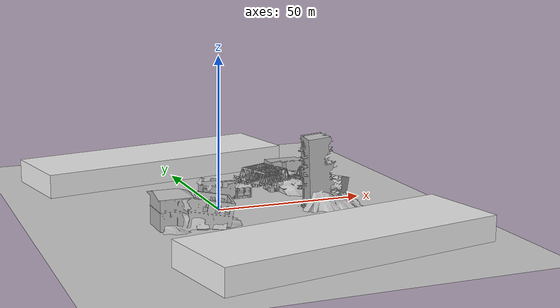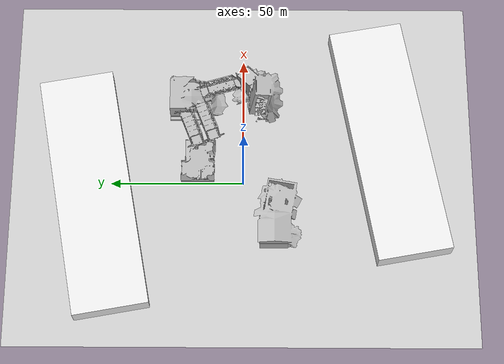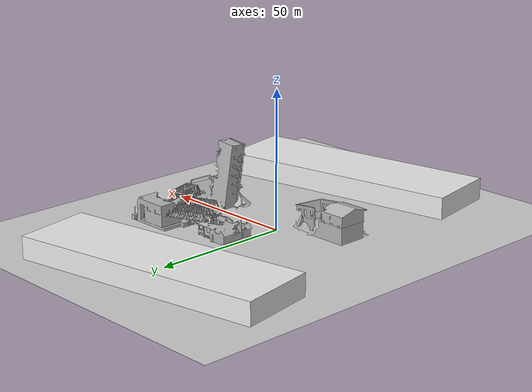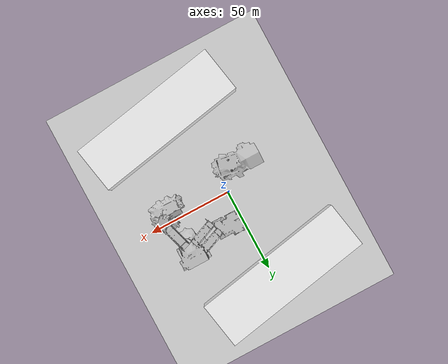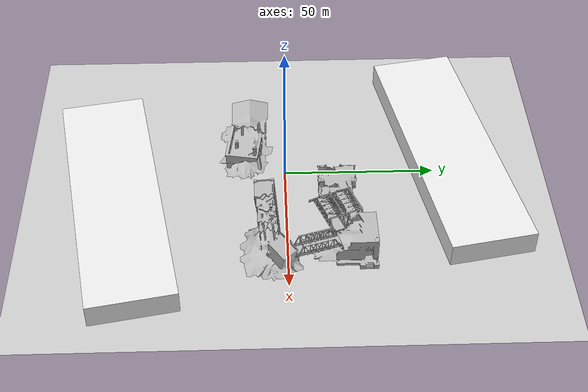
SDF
<sdf version="1.7">
 <world name="default">
  <spherical_coordinates>
   <surface_model>EARTH_WGS84</surface_model>
   <latitude_deg>42.3097</latitude_deg>
   <longitude_deg>-71.0959</longitude_deg>
   <elevation>141</elevation>
   <heading_deg>0</heading_deg>
  </spherical_coordinates>
  <gravity>0 0 -9.8066</gravity>
  <magnetic_field>6e-06 2.3e-05 -4.2e-05</magnetic_field>
  <physics name="default_physics" default="0" type="ode">
   <ode>
    <solver>
     <type>quick</type>
     <iters>10</iters>
     <sor>1.3</sor>
     <use_dynamic_moi_rescaling>0</use_dynamic_moi_rescaling>
    </solver>
    <constraints>
     <cfm>0</cfm>
     <erp>0.2</erp>
     <contact_max_correcting_vel>100</contact_max_correcting_vel>
     <contact_surface_layer>0.001</contact_surface_layer>
    </constraints>
   </ode>
   <max_step_size>0.004</max_step_size>
   <real_time_factor>1</real_time_factor>
   <real_time_update_rate>250</real_time_update_rate>
  </physics>
  <light name="sun" type="directional">
   <pose>0 0 10 0 -0 0</pose>
   <diffuse>0.8 0.8 0.8 1</diffuse>
   <specular>0.2 0.2 0.2 1</specular>
   <attenuation>
    <range>1000</range>
    <constant>0.9</constant>
    <linear>0.01</linear>
    <quadratic>0.001</quadratic>
   </attenuation>
   <direction>-0.5 0.1 -0.9</direction>
   <spot><inner_angle>0</inner_angle><outer_angle>0</outer_angle><falloff>0</falloff></spot>
  </light>
  <model name="franklin_park">
   <static>1</static>
   <link name="ground">
    <collision name="collision">
     <geometry><plane><normal>0 0 1</normal><size>5000 5000</size></plane></geometry>
     <surface><friction><ode><mu>100</mu><mu2>50</mu2></ode></friction></surface>
    </collision>
    <visual name="ground">
     <pose>0 0 -0.1 0 0 -1.57</pose>
     <cast_shadows>0</cast_shadows>
     <geometry><plane><normal>0 0 1</normal><size>200 200</size></plane></geometry>
     <material>
      <script>
       <uri>model://environment/franklin_park/materials/scripts</uri>
       <uri>model://environment/franklin_park/materials/textures</uri>
       <name>FranklinPark</name>
      </script>
     </material>
    </visual>
   </link>
   <frame name="bleachers_0::__model__" attached_to="bleachers_0::link_0">
    <pose relative_to="__model__">-5 56 -0.1 0 -0 0.18</pose>
   </frame>
   <link name="bleachers_0::link_0">
    <pose relative_to="bleachers_0::__model__">0 0 0 0 -0 0</pose>
    <visual name="visual">
     <pose>0 0 4 0 -0 0</pose>
     <geometry><box><size>92 28 8</size></box></geometry>
     <material>
      <lighting>1</lighting>
      <script><uri>file://media/materials/scripts/gazebo.material</uri><name>Gazebo/White</name></script>
      <shader type="pixel"><normal_map>__default__</normal_map></shader>
      <ambient>0.3 0.3 0.3 1</ambient>
      <diffuse>0.7 0.7 0.7 1</diffuse>
      <specular>0.01 0.01 0.01 1</specular>
      <emissive>0 0 0 1</emissive>
     </material>
    </visual>
    <collision name="collision">
     <pose>0 0 4 0 -0 0</pose>
     <geometry><box><size>92 28 8</size></box></geometry>
    </collision>
   </link>
   <static>1</static>
   <frame name="bleachers_1::__model__" attached_to="bleachers_1::link_0">
    <pose relative_to="__model__">16 -55 -0.1 0 -0 0.18</pose>
   </frame>
   <link name="bleachers_1::link_0">
    <pose relative_to="bleachers_1::__model__">0 0 0 0 -0 0</pose>
    <visual name="visual">
     <pose>0 0 4 0 -0 0</pose>
     <geometry><box><size>92 28 8</size></box></geometry>
     <material>
      <lighting>1</lighting>
      <script><uri>file://media/materials/scripts/gazebo.material</uri><name>Gazebo/White</name></script>
      <shader type="pixel"><normal_map>__default__</normal_map></shader>
      <ambient>0.3 0.3 0.3 1</ambient>
      <diffuse>0.7 0.7 0.7 1</diffuse>
      <specular>0.01 0.01 0.01 1</specular>
      <emissive>0 0 0 1</emissive>
     </material>
    </visual>
    <collision name="collision">
     <pose>0 0 4 0 -0 0</pose>
     <geometry><box><size>92 28 8</size></box></geometry>
    </collision>
   </link>
   <static>1</static>
  </model>
  <atmosphere type="adiabatic"/>
  <scene><ambient>0.4 0.4 0.4 1</ambient><background>0.7 0.7 0.7 1</background><shadows>1</shadows></scene>
  <model name="collapsed_fire_station">
   <static>1</static>
   <link name="link">
    <collision name="collision">
     <geometry><mesh><uri>model://collapsed_fire_station/meshes/collapsed_fire_station.dae</uri></mesh></geometry>
    </collision>
    <visual name="visual">
     <geometry><mesh><uri>model://collapsed_fire_station/meshes/collapsed_fire_station.dae</uri></mesh></geometry>
    </visual>
   </link>
   <pose>-11.6657 -12.9367 0 0 -0 0</pose>
  </model>
  <model name="collapsed_house">
   <static>1</static>
   <link name="link">
    <collision name="collision">
     <geometry>
      <mesh><scale>1.5 1.5 1.5</scale><uri>model://collapsed_house/meshes/collapsed_house.dae</uri></mesh>
     </geometry>
    </collision>
    <visual name="visual">
     <geometry>
      <mesh><scale>1.5 1.5 1.5</scale><uri>model://collapsed_house/meshes/collapsed_house.dae</uri></mesh>
     </geometry>
    </visual>
   </link>
   <pose>8.36368 17.165 0 0 -0 0</pose>
  </model>
  <model name="collapsed_industrial">
   <static>1</static>
   <link name="link">
    <collision name="collision">
     <geometry><mesh><uri>model://collapsed_industrial/meshes/collapsed_industrial.dae</uri></mesh></geometry>
    </collision>
    <visual name="visual">
     <geometry><mesh><uri>model://collapsed_industrial/meshes/collapsed_industrial.dae</uri></mesh></geometry>
    </visual>
   </link>
   <pose>35.4761 -6.14714 0 0 -0 0</pose>
  </model>
  <model name="collapsed_police_station">
   <static>1</static>
   <link name="link">
    <collision name="collision">
     <geometry>
      <mesh><uri>model://collapsed_police_station/meshes/collapsed_police_station.dae</uri></mesh>
     </geometry>
    </collision>
    <visual name="visual">
     <geometry>
      <mesh><uri>model://collapsed_police_station/meshes/collapsed_police_station.dae</uri></mesh>
     </geometry>
    </visual>
   </link>
   <pose>33.9271 17.1667 0 0 -0 0</pose>
  </model>
  <model name="truss_bridge">
   <static>1</static>
   <link name="link">
    <collision name="collision">
     <geometry><mesh><uri>model://truss_bridge/meshes/truss_bridge.dae</uri></mesh></geometry>
    </collision>
    <visual name="visual">
     <geometry><mesh><uri>model://truss_bridge/meshes/truss_bridge.dae</uri></mesh></geometry>
    </visual>
   </link>
   <pose>21.4886 19.9076 4.39497 0 0 -1.19759</pose>
  </model>
  <model name="truss_bridge_clone">
   <static>1</static>
   <link name="link">
    <collision name="collision">
     <geometry><mesh><uri>model://truss_bridge/meshes/truss_bridge.dae</uri></mesh></geometry>
    </collision>
    <visual name="visual">
     <geometry><mesh><uri>model://truss_bridge/meshes/truss_bridge.dae</uri></mesh></geometry>
    </visual>
   </link>
   <pose>23.883 13.8674 4.39497 0 0 -1.19759</pose>
  </model>
  <model name="truss_bridge_clone_0">
   <static>1</static>
   <link name="link">
    <collision name="collision">
     <geometry><mesh><uri>model://truss_bridge/meshes/truss_bridge.dae</uri></mesh></geometry>
    </collision>
    <visual name="visual">
     <geometry><mesh><uri>model://truss_bridge/meshes/truss_bridge.dae</uri></mesh></geometry>
    </visual>
   </link>
   <pose>37.6672 8.96263 4.39497 0 -0 0.288879</pose>
  </model>
 </world>
</sdf>
